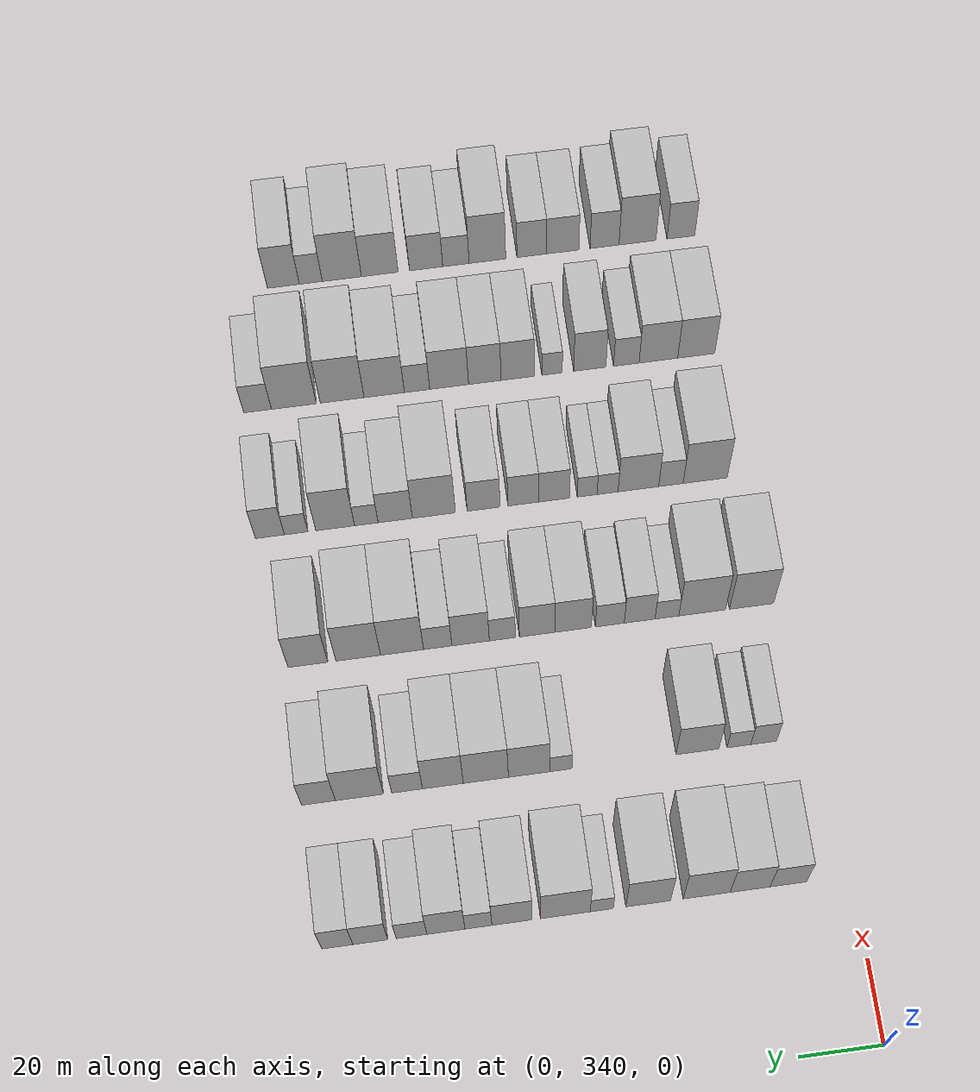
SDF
<sdf version="1.6">
 <world name="default">
  <model name="building_97">
   <static>1</static>
   <pose>50.0000 355.1132 0 0.000000 0.000000 0.000000</pose>
   <link name="link">
    <pose>0 0 9.00 0 0 0</pose>
    <collision name="collision"><geometry><box><size>20.0000 8.7633 18.0000</size></box></geometry></collision>
    <visual name="visual">
     <cast_shadows>0</cast_shadows>
     <geometry><box><size>20.0000 8.7633 18.0000</size></box></geometry>
     <material>
      <script>
       <uri>model://HANNAS_wall/materials/scripts</uri>
       <uri>model://HANNAS_wall/materials/textures</uri>
       <name>vrc/HANNAS_wall</name>
      </script>
     </material>
    </visual>
   </link>
  </model>
  <model name="building_98">
   <static>1</static>
   <pose>50.0000 364.2690 0 0.000000 0.000000 0.000000</pose>
   <link name="link">
    <pose>0 0 10.50 0 0 0</pose>
    <collision name="collision"><geometry><box><size>20.0000 9.5482 21.0000</size></box></geometry></collision>
    <visual name="visual">
     <cast_shadows>0</cast_shadows>
     <geometry><box><size>20.0000 9.5482 21.0000</size></box></geometry>
     <material>
      <script>
       <uri>model://HANNAS_wall/materials/scripts</uri>
       <uri>model://HANNAS_wall/materials/textures</uri>
       <name>vrc/HANNAS_wall</name>
      </script>
     </material>
    </visual>
   </link>
  </model>
  <model name="building_99">
   <static>1</static>
   <pose>50.0000 374.6729 0 0.000000 0.000000 0.000000</pose>
   <link name="link">
    <pose>0 0 12.00 0 0 0</pose>
    <collision name="collision"><geometry><box><size>20.0000 11.2596 24.0000</size></box></geometry></collision>
    <visual name="visual">
     <cast_shadows>0</cast_shadows>
     <geometry><box><size>20.0000 11.2596 24.0000</size></box></geometry>
     <material>
      <script>
       <uri>model://HANNAS_wall/materials/scripts</uri>
       <uri>model://HANNAS_wall/materials/textures</uri>
       <name>vrc/HANNAS_wall</name>
      </script>
     </material>
    </visual>
   </link>
  </model>
  <model name="building_100">
   <static>1</static>
   <pose>50.0000 388.6273 0 0.000000 0.000000 0.000000</pose>
   <link name="link">
    <pose>0 0 12.00 0 0 0</pose>
    <collision name="collision"><geometry><box><size>20.0000 10.6491 24.0000</size></box></geometry></collision>
    <visual name="visual">
     <cast_shadows>0</cast_shadows>
     <geometry><box><size>20.0000 10.6491 24.0000</size></box></geometry>
     <material>
      <script>
       <uri>model://HANNAS_wall/materials/scripts</uri>
       <uri>model://HANNAS_wall/materials/textures</uri>
       <name>vrc/HANNAS_wall</name>
      </script>
     </material>
    </visual>
   </link>
  </model>
  <model name="building_101">
   <static>1</static>
   <pose>50.0000 399.6920 0 0.000000 0.000000 0.000000</pose>
   <link name="link">
    <pose>0 0 6.00 0 0 0</pose>
    <collision name="collision"><geometry><box><size>20.0000 5.4803 12.0000</size></box></geometry></collision>
    <visual name="visual">
     <cast_shadows>0</cast_shadows>
     <geometry><box><size>20.0000 5.4803 12.0000</size></box></geometry>
     <material>
      <script>
       <uri>model://HANNAS_wall/materials/scripts</uri>
       <uri>model://HANNAS_wall/materials/textures</uri>
       <name>vrc/HANNAS_wall</name>
      </script>
     </material>
    </visual>
   </link>
  </model>
  <model name="building_102">
   <static>1</static>
   <pose>50.0000 408.3237 0 0.000000 0.000000 0.000000</pose>
   <link name="link">
    <pose>0 0 12.00 0 0 0</pose>
    <collision name="collision"><geometry><box><size>20.0000 11.7831 24.0000</size></box></geometry></collision>
    <visual name="visual">
     <cast_shadows>0</cast_shadows>
     <geometry><box><size>20.0000 11.7831 24.0000</size></box></geometry>
     <material>
      <script>
       <uri>model://HANNAS_wall/materials/scripts</uri>
       <uri>model://HANNAS_wall/materials/textures</uri>
       <name>vrc/HANNAS_wall</name>
      </script>
     </material>
    </visual>
   </link>
  </model>
  <model name="building_103">
   <static>1</static>
   <pose>50.0000 420.9601 0 0.000000 0.000000 0.000000</pose>
   <link name="link">
    <pose>0 0 10.50 0 0 0</pose>
    <collision name="collision"><geometry><box><size>20.0000 9.4897 21.0000</size></box></geometry></collision>
    <visual name="visual">
     <cast_shadows>0</cast_shadows>
     <geometry><box><size>20.0000 9.4897 21.0000</size></box></geometry>
     <material>
      <script>
       <uri>model://HANNAS_wall/materials/scripts</uri>
       <uri>model://HANNAS_wall/materials/textures</uri>
       <name>vrc/HANNAS_wall</name>
      </script>
     </material>
    </visual>
   </link>
  </model>
  <model name="building_104">
   <static>1</static>
   <pose>50.0000 428.8864 0 0.000000 0.000000 0.000000</pose>
   <link name="link">
    <pose>0 0 7.50 0 0 0</pose>
    <collision name="collision"><geometry><box><size>20.0000 6.3628 15.0000</size></box></geometry></collision>
    <visual name="visual">
     <cast_shadows>0</cast_shadows>
     <geometry><box><size>20.0000 6.3628 15.0000</size></box></geometry>
     <material>
      <script>
       <uri>model://HANNAS_wall/materials/scripts</uri>
       <uri>model://HANNAS_wall/materials/textures</uri>
       <name>vrc/HANNAS_wall</name>
      </script>
     </material>
    </visual>
   </link>
  </model>
  <model name="building_105">
   <static>1</static>
   <pose>50.0000 436.5799 0 0.000000 0.000000 0.000000</pose>
   <link name="link">
    <pose>0 0 10.50 0 0 0</pose>
    <collision name="collision"><geometry><box><size>20.0000 9.0242 21.0000</size></box></geometry></collision>
    <visual name="visual">
     <cast_shadows>0</cast_shadows>
     <geometry><box><size>20.0000 9.0242 21.0000</size></box></geometry>
     <material>
      <script>
       <uri>model://HANNAS_wall/materials/scripts</uri>
       <uri>model://HANNAS_wall/materials/textures</uri>
       <name>vrc/HANNAS_wall</name>
      </script>
     </material>
    </visual>
   </link>
  </model>
  <model name="building_106">
   <static>1</static>
   <pose>50.0000 444.6844 0 0.000000 0.000000 0.000000</pose>
   <link name="link">
    <pose>0 0 7.50 0 0 0</pose>
    <collision name="collision"><geometry><box><size>20.0000 7.1848 15.0000</size></box></geometry></collision>
    <visual name="visual">
     <cast_shadows>0</cast_shadows>
     <geometry><box><size>20.0000 7.1848 15.0000</size></box></geometry>
     <material>
      <script>
       <uri>model://HANNAS_wall/materials/scripts</uri>
       <uri>model://HANNAS_wall/materials/textures</uri>
       <name>vrc/HANNAS_wall</name>
      </script>
     </material>
    </visual>
   </link>
  </model>
  <model name="building_107">
   <static>1</static>
   <pose>50.0000 454.3821 0 0.000000 0.000000 0.000000</pose>
   <link name="link">
    <pose>0 0 9.00 0 0 0</pose>
    <collision name="collision"><geometry><box><size>20.0000 8.2105 18.0000</size></box></geometry></collision>
    <visual name="visual">
     <cast_shadows>0</cast_shadows>
     <geometry><box><size>20.0000 8.2105 18.0000</size></box></geometry>
     <material>
      <script>
       <uri>model://HANNAS_wall/materials/scripts</uri>
       <uri>model://HANNAS_wall/materials/textures</uri>
       <name>vrc/HANNAS_wall</name>
      </script>
     </material>
    </visual>
   </link>
  </model>
  <model name="building_108">
   <static>1</static>
   <pose>50.0000 462.1472 0 0.000000 0.000000 0.000000</pose>
   <link name="link">
    <pose>0 0 9.00 0 0 0</pose>
    <collision name="collision"><geometry><box><size>20.0000 7.3196 18.0000</size></box></geometry></collision>
    <visual name="visual">
     <cast_shadows>0</cast_shadows>
     <geometry><box><size>20.0000 7.3196 18.0000</size></box></geometry>
     <material>
      <script>
       <uri>model://HANNAS_wall/materials/scripts</uri>
       <uri>model://HANNAS_wall/materials/textures</uri>
       <name>vrc/HANNAS_wall</name>
      </script>
     </material>
    </visual>
   </link>
  </model>
  <model name="building_222">
   <static>1</static>
   <pose>85.0000 354.8538 0 0.000000 0.000000 0.000000</pose>
   <link name="link">
    <pose>0 0 7.50 0 0 0</pose>
    <collision name="collision"><geometry><box><size>20.0000 6.3608 15.0000</size></box></geometry></collision>
    <visual name="visual">
     <cast_shadows>0</cast_shadows>
     <geometry><box><size>20.0000 6.3608 15.0000</size></box></geometry>
     <material>
      <script>
       <uri>model://HANNAS_wall/materials/scripts</uri>
       <uri>model://HANNAS_wall/materials/textures</uri>
       <name>vrc/HANNAS_wall</name>
      </script>
     </material>
    </visual>
   </link>
  </model>
  <model name="building_223">
   <static>1</static>
   <pose>85.0000 360.9358 0 0.000000 0.000000 0.000000</pose>
   <link name="link">
    <pose>0 0 6.00 0 0 0</pose>
    <collision name="collision"><geometry><box><size>20.0000 5.8031 12.0000</size></box></geometry></collision>
    <visual name="visual">
     <cast_shadows>0</cast_shadows>
     <geometry><box><size>20.0000 5.8031 12.0000</size></box></geometry>
     <material>
      <script>
       <uri>model://HANNAS_wall/materials/scripts</uri>
       <uri>model://HANNAS_wall/materials/textures</uri>
       <name>vrc/HANNAS_wall</name>
      </script>
     </material>
    </visual>
   </link>
  </model>
  <model name="building_224">
   <static>1</static>
   <pose>85.0000 371.0827 0 0.000000 0.000000 0.000000</pose>
   <link name="link">
    <pose>0 0 10.50 0 0 0</pose>
    <collision name="collision"><geometry><box><size>20.0000 10.4908 21.0000</size></box></geometry></collision>
    <visual name="visual">
     <cast_shadows>0</cast_shadows>
     <geometry><box><size>20.0000 10.4908 21.0000</size></box></geometry>
     <material>
      <script>
       <uri>model://HANNAS_wall/materials/scripts</uri>
       <uri>model://HANNAS_wall/materials/textures</uri>
       <name>vrc/HANNAS_wall</name>
      </script>
     </material>
    </visual>
   </link>
  </model>
  <model name="building_225">
   <static>1</static>
   <pose>85.0000 404.3880 0 0.000000 0.000000 0.000000</pose>
   <link name="link">
    <pose>0 0 6.00 0 0 0</pose>
    <collision name="collision"><geometry><box><size>20.0000 5.3733 12.0000</size></box></geometry></collision>
    <visual name="visual">
     <cast_shadows>0</cast_shadows>
     <geometry><box><size>20.0000 5.3733 12.0000</size></box></geometry>
     <material>
      <script>
       <uri>model://HANNAS_wall/materials/scripts</uri>
       <uri>model://HANNAS_wall/materials/textures</uri>
       <name>vrc/HANNAS_wall</name>
      </script>
     </material>
    </visual>
   </link>
  </model>
  <model name="building_226">
   <static>1</static>
   <pose>85.0000 412.0956 0 0.000000 0.000000 0.000000</pose>
   <link name="link">
    <pose>0 0 12.00 0 0 0</pose>
    <collision name="collision"><geometry><box><size>20.0000 10.0420 24.0000</size></box></geometry></collision>
    <visual name="visual">
     <cast_shadows>0</cast_shadows>
     <geometry><box><size>20.0000 10.0420 24.0000</size></box></geometry>
     <material>
      <script>
       <uri>model://HANNAS_wall/materials/scripts</uri>
       <uri>model://HANNAS_wall/materials/textures</uri>
       <name>vrc/HANNAS_wall</name>
      </script>
     </material>
    </visual>
   </link>
  </model>
  <model name="building_227">
   <static>1</static>
   <pose>85.0000 422.5827 0 0.000000 0.000000 0.000000</pose>
   <link name="link">
    <pose>0 0 12.00 0 0 0</pose>
    <collision name="collision"><geometry><box><size>20.0000 10.9322 24.0000</size></box></geometry></collision>
    <visual name="visual">
     <cast_shadows>0</cast_shadows>
     <geometry><box><size>20.0000 10.9322 24.0000</size></box></geometry>
     <material>
      <script>
       <uri>model://HANNAS_wall/materials/scripts</uri>
       <uri>model://HANNAS_wall/materials/textures</uri>
       <name>vrc/HANNAS_wall</name>
      </script>
     </material>
    </visual>
   </link>
  </model>
  <model name="building_228">
   <static>1</static>
   <pose>85.0000 432.9704 0 0.000000 0.000000 0.000000</pose>
   <link name="link">
    <pose>0 0 12.00 0 0 0</pose>
    <collision name="collision"><geometry><box><size>20.0000 9.8433 24.0000</size></box></geometry></collision>
    <visual name="visual">
     <cast_shadows>0</cast_shadows>
     <geometry><box><size>20.0000 9.8433 24.0000</size></box></geometry>
     <material>
      <script>
       <uri>model://HANNAS_wall/materials/scripts</uri>
       <uri>model://HANNAS_wall/materials/textures</uri>
       <name>vrc/HANNAS_wall</name>
      </script>
     </material>
    </visual>
   </link>
  </model>
  <model name="building_229">
   <static>1</static>
   <pose>85.0000 441.6124 0 0.000000 0.000000 0.000000</pose>
   <link name="link">
    <pose>0 0 7.50 0 0 0</pose>
    <collision name="collision"><geometry><box><size>20.0000 7.4407 15.0000</size></box></geometry></collision>
    <visual name="visual">
     <cast_shadows>0</cast_shadows>
     <geometry><box><size>20.0000 7.4407 15.0000</size></box></geometry>
     <material>
      <script>
       <uri>model://HANNAS_wall/materials/scripts</uri>
       <uri>model://HANNAS_wall/materials/textures</uri>
       <name>vrc/HANNAS_wall</name>
      </script>
     </material>
    </visual>
   </link>
  </model>
  <model name="building_230">
   <static>1</static>
   <pose>85.0000 453.1230 0 0.000000 0.000000 0.000000</pose>
   <link name="link">
    <pose>0 0 12.00 0 0 0</pose>
    <collision name="collision"><geometry><box><size>20.0000 11.5804 24.0000</size></box></geometry></collision>
    <visual name="visual">
     <cast_shadows>0</cast_shadows>
     <geometry><box><size>20.0000 11.5804 24.0000</size></box></geometry>
     <material>
      <script>
       <uri>model://HANNAS_wall/materials/scripts</uri>
       <uri>model://HANNAS_wall/materials/textures</uri>
       <name>vrc/HANNAS_wall</name>
      </script>
     </material>
    </visual>
   </link>
  </model>
  <model name="building_231">
   <static>1</static>
   <pose>85.0000 462.9838 0 0.000000 0.000000 0.000000</pose>
   <link name="link">
    <pose>0 0 9.00 0 0 0</pose>
    <collision name="collision"><geometry><box><size>20.0000 8.1414 18.0000</size></box></geometry></collision>
    <visual name="visual">
     <cast_shadows>0</cast_shadows>
     <geometry><box><size>20.0000 8.1414 18.0000</size></box></geometry>
     <material>
      <script>
       <uri>model://HANNAS_wall/materials/scripts</uri>
       <uri>model://HANNAS_wall/materials/textures</uri>
       <name>vrc/HANNAS_wall</name>
      </script>
     </material>
    </visual>
   </link>
  </model>
  <model name="building_350">
   <static>1</static>
   <pose>120.0000 351.6937 0 0.000000 0.000000 0.000000</pose>
   <link name="link">
    <pose>0 0 12.00 0 0 0</pose>
    <collision name="collision"><geometry><box><size>20.0000 11.0923 24.0000</size></box></geometry></collision>
    <visual name="visual">
     <cast_shadows>0</cast_shadows>
     <geometry><box><size>20.0000 11.0923 24.0000</size></box></geometry>
     <material>
      <script>
       <uri>model://HANNAS_wall/materials/scripts</uri>
       <uri>model://HANNAS_wall/materials/textures</uri>
       <name>vrc/HANNAS_wall</name>
      </script>
     </material>
    </visual>
   </link>
  </model>
  <model name="building_351">
   <static>1</static>
   <pose>120.0000 364.0882 0 0.000000 0.000000 0.000000</pose>
   <link name="link">
    <pose>0 0 12.00 0 0 0</pose>
    <collision name="collision"><geometry><box><size>20.0000 11.6968 24.0000</size></box></geometry></collision>
    <visual name="visual">
     <cast_shadows>0</cast_shadows>
     <geometry><box><size>20.0000 11.6968 24.0000</size></box></geometry>
     <material>
      <script>
       <uri>model://HANNAS_wall/materials/scripts</uri>
       <uri>model://HANNAS_wall/materials/textures</uri>
       <name>vrc/HANNAS_wall</name>
      </script>
     </material>
    </visual>
   </link>
  </model>
  <model name="building_352">
   <static>1</static>
   <pose>120.0000 372.9166 0 0.000000 0.000000 0.000000</pose>
   <link name="link">
    <pose>0 0 6.00 0 0 0</pose>
    <collision name="collision"><geometry><box><size>20.0000 5.9599 12.0000</size></box></geometry></collision>
    <visual name="visual">
     <cast_shadows>0</cast_shadows>
     <geometry><box><size>20.0000 5.9599 12.0000</size></box></geometry>
     <material>
      <script>
       <uri>model://HANNAS_wall/materials/scripts</uri>
       <uri>model://HANNAS_wall/materials/textures</uri>
       <name>vrc/HANNAS_wall</name>
      </script>
     </material>
    </visual>
   </link>
  </model>
  <model name="building_353">
   <static>1</static>
   <pose>120.0000 379.7431 0 0.000000 0.000000 0.000000</pose>
   <link name="link">
    <pose>0 0 9.00 0 0 0</pose>
    <collision name="collision"><geometry><box><size>20.0000 7.6931 18.0000</size></box></geometry></collision>
    <visual name="visual">
     <cast_shadows>0</cast_shadows>
     <geometry><box><size>20.0000 7.6931 18.0000</size></box></geometry>
     <material>
      <script>
       <uri>model://HANNAS_wall/materials/scripts</uri>
       <uri>model://HANNAS_wall/materials/textures</uri>
       <name>vrc/HANNAS_wall</name>
      </script>
     </material>
    </visual>
   </link>
  </model>
  <model name="building_354">
   <static>1</static>
   <pose>120.0000 387.1867 0 0.000000 0.000000 0.000000</pose>
   <link name="link">
    <pose>0 0 7.50 0 0 0</pose>
    <collision name="collision"><geometry><box><size>20.0000 7.1941 15.0000</size></box></geometry></collision>
    <visual name="visual">
     <cast_shadows>0</cast_shadows>
     <geometry><box><size>20.0000 7.1941 15.0000</size></box></geometry>
     <material>
      <script>
       <uri>model://HANNAS_wall/materials/scripts</uri>
       <uri>model://HANNAS_wall/materials/textures</uri>
       <name>vrc/HANNAS_wall</name>
      </script>
     </material>
    </visual>
   </link>
  </model>
  <model name="building_355">
   <static>1</static>
   <pose>120.0000 396.3357 0 0.000000 0.000000 0.000000</pose>
   <link name="link">
    <pose>0 0 10.50 0 0 0</pose>
    <collision name="collision"><geometry><box><size>20.0000 9.1040 21.0000</size></box></geometry></collision>
    <visual name="visual">
     <cast_shadows>0</cast_shadows>
     <geometry><box><size>20.0000 9.1040 21.0000</size></box></geometry>
     <material>
      <script>
       <uri>model://HANNAS_wall/materials/scripts</uri>
       <uri>model://HANNAS_wall/materials/textures</uri>
       <name>vrc/HANNAS_wall</name>
      </script>
     </material>
    </visual>
   </link>
  </model>
  <model name="building_356">
   <static>1</static>
   <pose>120.0000 405.2878 0 0.000000 0.000000 0.000000</pose>
   <link name="link">
    <pose>0 0 10.50 0 0 0</pose>
    <collision name="collision"><geometry><box><size>20.0000 8.8002 21.0000</size></box></geometry></collision>
    <visual name="visual">
     <cast_shadows>0</cast_shadows>
     <geometry><box><size>20.0000 8.8002 21.0000</size></box></geometry>
     <material>
      <script>
       <uri>model://HANNAS_wall/materials/scripts</uri>
       <uri>model://HANNAS_wall/materials/textures</uri>
       <name>vrc/HANNAS_wall</name>
      </script>
     </material>
    </visual>
   </link>
  </model>
  <model name="building_357">
   <static>1</static>
   <pose>120.0000 413.9272 0 0.000000 0.000000 0.000000</pose>
   <link name="link">
    <pose>0 0 7.50 0 0 0</pose>
    <collision name="collision"><geometry><box><size>20.0000 6.4787 15.0000</size></box></geometry></collision>
    <visual name="visual">
     <cast_shadows>0</cast_shadows>
     <geometry><box><size>20.0000 6.4787 15.0000</size></box></geometry>
     <material>
      <script>
       <uri>model://HANNAS_wall/materials/scripts</uri>
       <uri>model://HANNAS_wall/materials/textures</uri>
       <name>vrc/HANNAS_wall</name>
      </script>
     </material>
    </visual>
   </link>
  </model>
  <model name="building_358">
   <static>1</static>
   <pose>120.0000 421.7994 0 0.000000 0.000000 0.000000</pose>
   <link name="link">
    <pose>0 0 10.50 0 0 0</pose>
    <collision name="collision"><geometry><box><size>20.0000 9.2656 21.0000</size></box></geometry></collision>
    <visual name="visual">
     <cast_shadows>0</cast_shadows>
     <geometry><box><size>20.0000 9.2656 21.0000</size></box></geometry>
     <material>
      <script>
       <uri>model://HANNAS_wall/materials/scripts</uri>
       <uri>model://HANNAS_wall/materials/textures</uri>
       <name>vrc/HANNAS_wall</name>
      </script>
     </material>
    </visual>
   </link>
  </model>
  <model name="building_359">
   <static>1</static>
   <pose>120.0000 429.9348 0 0.000000 0.000000 0.000000</pose>
   <link name="link">
    <pose>0 0 7.50 0 0 0</pose>
    <collision name="collision"><geometry><box><size>20.0000 7.0053 15.0000</size></box></geometry></collision>
    <visual name="visual">
     <cast_shadows>0</cast_shadows>
     <geometry><box><size>20.0000 7.0053 15.0000</size></box></geometry>
     <material>
      <script>
       <uri>model://HANNAS_wall/materials/scripts</uri>
       <uri>model://HANNAS_wall/materials/textures</uri>
       <name>vrc/HANNAS_wall</name>
      </script>
     </material>
    </visual>
   </link>
  </model>
  <model name="building_360">
   <static>1</static>
   <pose>120.0000 438.7653 0 0.000000 0.000000 0.000000</pose>
   <link name="link">
    <pose>0 0 12.00 0 0 0</pose>
    <collision name="collision"><geometry><box><size>20.0000 10.6556 24.0000</size></box></geometry></collision>
    <visual name="visual">
     <cast_shadows>0</cast_shadows>
     <geometry><box><size>20.0000 10.6556 24.0000</size></box></geometry>
     <material>
      <script>
       <uri>model://HANNAS_wall/materials/scripts</uri>
       <uri>model://HANNAS_wall/materials/textures</uri>
       <name>vrc/HANNAS_wall</name>
      </script>
     </material>
    </visual>
   </link>
  </model>
  <model name="building_361">
   <static>1</static>
   <pose>120.0000 449.5954 0 0.000000 0.000000 0.000000</pose>
   <link name="link">
    <pose>0 0 12.00 0 0 0</pose>
    <collision name="collision"><geometry><box><size>20.0000 11.0045 24.0000</size></box></geometry></collision>
    <visual name="visual">
     <cast_shadows>0</cast_shadows>
     <geometry><box><size>20.0000 11.0045 24.0000</size></box></geometry>
     <material>
      <script>
       <uri>model://HANNAS_wall/materials/scripts</uri>
       <uri>model://HANNAS_wall/materials/textures</uri>
       <name>vrc/HANNAS_wall</name>
      </script>
     </material>
    </visual>
   </link>
  </model>
  <model name="building_362">
   <static>1</static>
   <pose>120.0000 461.9965 0 0.000000 0.000000 0.000000</pose>
   <link name="link">
    <pose>0 0 10.50 0 0 0</pose>
    <collision name="collision"><geometry><box><size>20.0000 9.7977 21.0000</size></box></geometry></collision>
    <visual name="visual">
     <cast_shadows>0</cast_shadows>
     <geometry><box><size>20.0000 9.7977 21.0000</size></box></geometry>
     <material>
      <script>
       <uri>model://HANNAS_wall/materials/scripts</uri>
       <uri>model://HANNAS_wall/materials/textures</uri>
       <name>vrc/HANNAS_wall</name>
      </script>
     </material>
    </visual>
   </link>
  </model>
  <model name="building_471">
   <static>1</static>
   <pose>155.0000 357.4635 0 0.000000 0.000000 0.000000</pose>
   <link name="link">
    <pose>0 0 12.00 0 0 0</pose>
    <collision name="collision"><geometry><box><size>20.0000 11.3097 24.0000</size></box></geometry></collision>
    <visual name="visual">
     <cast_shadows>0</cast_shadows>
     <geometry><box><size>20.0000 11.3097 24.0000</size></box></geometry>
     <material>
      <script>
       <uri>model://HANNAS_wall/materials/scripts</uri>
       <uri>model://HANNAS_wall/materials/textures</uri>
       <name>vrc/HANNAS_wall</name>
      </script>
     </material>
    </visual>
   </link>
  </model>
  <model name="building_472">
   <static>1</static>
   <pose>155.0000 366.2553 0 0.000000 0.000000 0.000000</pose>
   <link name="link">
    <pose>0 0 7.50 0 0 0</pose>
    <collision name="collision"><geometry><box><size>20.0000 6.2739 15.0000</size></box></geometry></collision>
    <visual name="visual">
     <cast_shadows>0</cast_shadows>
     <geometry><box><size>20.0000 6.2739 15.0000</size></box></geometry>
     <material>
      <script>
       <uri>model://HANNAS_wall/materials/scripts</uri>
       <uri>model://HANNAS_wall/materials/textures</uri>
       <name>vrc/HANNAS_wall</name>
      </script>
     </material>
    </visual>
   </link>
  </model>
  <model name="building_473">
   <static>1</static>
   <pose>155.0000 374.5760 0 0.000000 0.000000 0.000000</pose>
   <link name="link">
    <pose>0 0 10.50 0 0 0</pose>
    <collision name="collision"><geometry><box><size>20.0000 10.3677 21.0000</size></box></geometry></collision>
    <visual name="visual">
     <cast_shadows>0</cast_shadows>
     <geometry><box><size>20.0000 10.3677 21.0000</size></box></geometry>
     <material>
      <script>
       <uri>model://HANNAS_wall/materials/scripts</uri>
       <uri>model://HANNAS_wall/materials/textures</uri>
       <name>vrc/HANNAS_wall</name>
      </script>
     </material>
    </visual>
   </link>
  </model>
  <model name="building_474">
   <static>1</static>
   <pose>155.0000 382.4511 0 0.000000 0.000000 0.000000</pose>
   <link name="link">
    <pose>0 0 6.00 0 0 0</pose>
    <collision name="collision"><geometry><box><size>20.0000 5.3825 12.0000</size></box></geometry></collision>
    <visual name="visual">
     <cast_shadows>0</cast_shadows>
     <geometry><box><size>20.0000 5.3825 12.0000</size></box></geometry>
     <material>
      <script>
       <uri>model://HANNAS_wall/materials/scripts</uri>
       <uri>model://HANNAS_wall/materials/textures</uri>
       <name>vrc/HANNAS_wall</name>
      </script>
     </material>
    </visual>
   </link>
  </model>
  <model name="building_475">
   <static>1</static>
   <pose>155.0000 387.6671 0 0.000000 0.000000 0.000000</pose>
   <link name="link">
    <pose>0 0 6.00 0 0 0</pose>
    <collision name="collision"><geometry><box><size>20.0000 5.0494 12.0000</size></box></geometry></collision>
    <visual name="visual">
     <cast_shadows>0</cast_shadows>
     <geometry><box><size>20.0000 5.0494 12.0000</size></box></geometry>
     <material>
      <script>
       <uri>model://HANNAS_wall/materials/scripts</uri>
       <uri>model://HANNAS_wall/materials/textures</uri>
       <name>vrc/HANNAS_wall</name>
      </script>
     </material>
    </visual>
   </link>
  </model>
  <model name="building_476">
   <static>1</static>
   <pose>155.0000 396.1037 0 0.000000 0.000000 0.000000</pose>
   <link name="link">
    <pose>0 0 9.00 0 0 0</pose>
    <collision name="collision"><geometry><box><size>20.0000 7.8238 18.0000</size></box></geometry></collision>
    <visual name="visual">
     <cast_shadows>0</cast_shadows>
     <geometry><box><size>20.0000 7.8238 18.0000</size></box></geometry>
     <material>
      <script>
       <uri>model://HANNAS_wall/materials/scripts</uri>
       <uri>model://HANNAS_wall/materials/textures</uri>
       <name>vrc/HANNAS_wall</name>
      </script>
     </material>
    </visual>
   </link>
  </model>
  <model name="building_477">
   <static>1</static>
   <pose>155.0000 403.9241 0 0.000000 0.000000 0.000000</pose>
   <link name="link">
    <pose>0 0 9.00 0 0 0</pose>
    <collision name="collision"><geometry><box><size>20.0000 7.8169 18.0000</size></box></geometry></collision>
    <visual name="visual">
     <cast_shadows>0</cast_shadows>
     <geometry><box><size>20.0000 7.8169 18.0000</size></box></geometry>
     <material>
      <script>
       <uri>model://HANNAS_wall/materials/scripts</uri>
       <uri>model://HANNAS_wall/materials/textures</uri>
       <name>vrc/HANNAS_wall</name>
      </script>
     </material>
    </visual>
   </link>
  </model>
  <model name="building_478">
   <static>1</static>
   <pose>155.0000 414.0114 0 0.000000 0.000000 0.000000</pose>
   <link name="link">
    <pose>0 0 9.00 0 0 0</pose>
    <collision name="collision"><geometry><box><size>20.0000 8.3577 18.0000</size></box></geometry></collision>
    <visual name="visual">
     <cast_shadows>0</cast_shadows>
     <geometry><box><size>20.0000 8.3577 18.0000</size></box></geometry>
     <material>
      <script>
       <uri>model://HANNAS_wall/materials/scripts</uri>
       <uri>model://HANNAS_wall/materials/textures</uri>
       <name>vrc/HANNAS_wall</name>
      </script>
     </material>
    </visual>
   </link>
  </model>
  <model name="building_479">
   <static>1</static>
   <pose>155.0000 426.6283 0 0.000000 0.000000 0.000000</pose>
   <link name="link">
    <pose>0 0 12.00 0 0 0</pose>
    <collision name="collision"><geometry><box><size>20.0000 10.8762 24.0000</size></box></geometry></collision>
    <visual name="visual">
     <cast_shadows>0</cast_shadows>
     <geometry><box><size>20.0000 10.8762 24.0000</size></box></geometry>
     <material>
      <script>
       <uri>model://HANNAS_wall/materials/scripts</uri>
       <uri>model://HANNAS_wall/materials/textures</uri>
       <name>vrc/HANNAS_wall</name>
      </script>
     </material>
    </visual>
   </link>
  </model>
  <model name="building_480">
   <static>1</static>
   <pose>155.0000 436.4129 0 0.000000 0.000000 0.000000</pose>
   <link name="link">
    <pose>0 0 9.00 0 0 0</pose>
    <collision name="collision"><geometry><box><size>20.0000 8.6930 18.0000</size></box></geometry></collision>
    <visual name="visual">
     <cast_shadows>0</cast_shadows>
     <geometry><box><size>20.0000 8.6930 18.0000</size></box></geometry>
     <material>
      <script>
       <uri>model://HANNAS_wall/materials/scripts</uri>
       <uri>model://HANNAS_wall/materials/textures</uri>
       <name>vrc/HANNAS_wall</name>
      </script>
     </material>
    </visual>
   </link>
  </model>
  <model name="building_481">
   <static>1</static>
   <pose>155.0000 443.7408 0 0.000000 0.000000 0.000000</pose>
   <link name="link">
    <pose>0 0 6.00 0 0 0</pose>
    <collision name="collision"><geometry><box><size>20.0000 5.9628 12.0000</size></box></geometry></collision>
    <visual name="visual">
     <cast_shadows>0</cast_shadows>
     <geometry><box><size>20.0000 5.9628 12.0000</size></box></geometry>
     <material>
      <script>
       <uri>model://HANNAS_wall/materials/scripts</uri>
       <uri>model://HANNAS_wall/materials/textures</uri>
       <name>vrc/HANNAS_wall</name>
      </script>
     </material>
    </visual>
   </link>
  </model>
  <model name="building_482">
   <static>1</static>
   <pose>155.0000 451.6033 0 0.000000 0.000000 0.000000</pose>
   <link name="link">
    <pose>0 0 12.00 0 0 0</pose>
    <collision name="collision"><geometry><box><size>20.0000 9.7621 24.0000</size></box></geometry></collision>
    <visual name="visual">
     <cast_shadows>0</cast_shadows>
     <geometry><box><size>20.0000 9.7621 24.0000</size></box></geometry>
     <material>
      <script>
       <uri>model://HANNAS_wall/materials/scripts</uri>
       <uri>model://HANNAS_wall/materials/textures</uri>
       <name>vrc/HANNAS_wall</name>
      </script>
     </material>
    </visual>
   </link>
  </model>
  <model name="building_483">
   <static>1</static>
   <pose>155.0000 461.4435 0 0.000000 0.000000 0.000000</pose>
   <link name="link">
    <pose>0 0 6.00 0 0 0</pose>
    <collision name="collision"><geometry><box><size>20.0000 5.9182 12.0000</size></box></geometry></collision>
    <visual name="visual">
     <cast_shadows>0</cast_shadows>
     <geometry><box><size>20.0000 5.9182 12.0000</size></box></geometry>
     <material>
      <script>
       <uri>model://HANNAS_wall/materials/scripts</uri>
       <uri>model://HANNAS_wall/materials/textures</uri>
       <name>vrc/HANNAS_wall</name>
      </script>
     </material>
    </visual>
   </link>
  </model>
  <model name="building_484">
   <static>1</static>
   <pose>155.0000 468.0605 0 0.000000 0.000000 0.000000</pose>
   <link name="link">
    <pose>0 0 9.00 0 0 0</pose>
    <collision name="collision"><geometry><box><size>20.0000 7.3158 18.0000</size></box></geometry></collision>
    <visual name="visual">
     <cast_shadows>0</cast_shadows>
     <geometry><box><size>20.0000 7.3158 18.0000</size></box></geometry>
     <material>
      <script>
       <uri>model://HANNAS_wall/materials/scripts</uri>
       <uri>model://HANNAS_wall/materials/textures</uri>
       <name>vrc/HANNAS_wall</name>
      </script>
     </material>
    </visual>
   </link>
  </model>
  <model name="building_600">
   <static>1</static>
   <pose>190.0000 353.9678 0 0.000000 0.000000 0.000000</pose>
   <link name="link">
    <pose>0 0 10.50 0 0 0</pose>
    <collision name="collision"><geometry><box><size>20.0000 9.7001 21.0000</size></box></geometry></collision>
    <visual name="visual">
     <cast_shadows>0</cast_shadows>
     <geometry><box><size>20.0000 9.7001 21.0000</size></box></geometry>
     <material>
      <script>
       <uri>model://HANNAS_wall/materials/scripts</uri>
       <uri>model://HANNAS_wall/materials/textures</uri>
       <name>vrc/HANNAS_wall</name>
      </script>
     </material>
    </visual>
   </link>
  </model>
  <model name="building_601">
   <static>1</static>
   <pose>190.0000 363.8756 0 0.000000 0.000000 0.000000</pose>
   <link name="link">
    <pose>0 0 10.50 0 0 0</pose>
    <collision name="collision"><geometry><box><size>20.0000 10.1155 21.0000</size></box></geometry></collision>
    <visual name="visual">
     <cast_shadows>0</cast_shadows>
     <geometry><box><size>20.0000 10.1155 21.0000</size></box></geometry>
     <material>
      <script>
       <uri>model://HANNAS_wall/materials/scripts</uri>
       <uri>model://HANNAS_wall/materials/textures</uri>
       <name>vrc/HANNAS_wall</name>
      </script>
     </material>
    </visual>
   </link>
  </model>
  <model name="building_602">
   <static>1</static>
   <pose>190.0000 372.2793 0 0.000000 0.000000 0.000000</pose>
   <link name="link">
    <pose>0 0 7.50 0 0 0</pose>
    <collision name="collision"><geometry><box><size>20.0000 6.6918 15.0000</size></box></geometry></collision>
    <visual name="visual">
     <cast_shadows>0</cast_shadows>
     <geometry><box><size>20.0000 6.6918 15.0000</size></box></geometry>
     <material>
      <script>
       <uri>model://HANNAS_wall/materials/scripts</uri>
       <uri>model://HANNAS_wall/materials/textures</uri>
       <name>vrc/HANNAS_wall</name>
      </script>
     </material>
    </visual>
   </link>
  </model>
  <model name="building_603">
   <static>1</static>
   <pose>190.0000 381.8282 0 0.000000 0.000000 0.000000</pose>
   <link name="link">
    <pose>0 0 10.50 0 0 0</pose>
    <collision name="collision"><geometry><box><size>20.0000 8.4059 21.0000</size></box></geometry></collision>
    <visual name="visual">
     <cast_shadows>0</cast_shadows>
     <geometry><box><size>20.0000 8.4059 21.0000</size></box></geometry>
     <material>
      <script>
       <uri>model://HANNAS_wall/materials/scripts</uri>
       <uri>model://HANNAS_wall/materials/textures</uri>
       <name>vrc/HANNAS_wall</name>
      </script>
     </material>
    </visual>
   </link>
  </model>
  <model name="building_604">
   <static>1</static>
   <pose>190.0000 391.6798 0 0.000000 0.000000 0.000000</pose>
   <link name="link">
    <pose>0 0 6.00 0 0 0</pose>
    <collision name="collision"><geometry><box><size>20.0000 5.2972 12.0000</size></box></geometry></collision>
    <visual name="visual">
     <cast_shadows>0</cast_shadows>
     <geometry><box><size>20.0000 5.2972 12.0000</size></box></geometry>
     <material>
      <script>
       <uri>model://HANNAS_wall/materials/scripts</uri>
       <uri>model://HANNAS_wall/materials/textures</uri>
       <name>vrc/HANNAS_wall</name>
      </script>
     </material>
    </visual>
   </link>
  </model>
  <model name="building_605">
   <static>1</static>
   <pose>190.0000 400.6275 0 0.000000 0.000000 0.000000</pose>
   <link name="link">
    <pose>0 0 10.50 0 0 0</pose>
    <collision name="collision"><geometry><box><size>20.0000 8.5982 21.0000</size></box></geometry></collision>
    <visual name="visual">
     <cast_shadows>0</cast_shadows>
     <geometry><box><size>20.0000 8.5982 21.0000</size></box></geometry>
     <material>
      <script>
       <uri>model://HANNAS_wall/materials/scripts</uri>
       <uri>model://HANNAS_wall/materials/textures</uri>
       <name>vrc/HANNAS_wall</name>
      </script>
     </material>
    </visual>
   </link>
  </model>
  <model name="building_606">
   <static>1</static>
   <pose>190.0000 409.1608 0 0.000000 0.000000 0.000000</pose>
   <link name="link">
    <pose>0 0 10.50 0 0 0</pose>
    <collision name="collision"><geometry><box><size>20.0000 8.4685 21.0000</size></box></geometry></collision>
    <visual name="visual">
     <cast_shadows>0</cast_shadows>
     <geometry><box><size>20.0000 8.4685 21.0000</size></box></geometry>
     <material>
      <script>
       <uri>model://HANNAS_wall/materials/scripts</uri>
       <uri>model://HANNAS_wall/materials/textures</uri>
       <name>vrc/HANNAS_wall</name>
      </script>
     </material>
    </visual>
   </link>
  </model>
  <model name="building_607">
   <static>1</static>
   <pose>190.0000 418.4400 0 0.000000 0.000000 0.000000</pose>
   <link name="link">
    <pose>0 0 10.50 0 0 0</pose>
    <collision name="collision"><geometry><box><size>20.0000 10.0899 21.0000</size></box></geometry></collision>
    <visual name="visual">
     <cast_shadows>0</cast_shadows>
     <geometry><box><size>20.0000 10.0899 21.0000</size></box></geometry>
     <material>
      <script>
       <uri>model://HANNAS_wall/materials/scripts</uri>
       <uri>model://HANNAS_wall/materials/textures</uri>
       <name>vrc/HANNAS_wall</name>
      </script>
     </material>
    </visual>
   </link>
  </model>
  <model name="building_608">
   <static>1</static>
   <pose>190.0000 426.7619 0 0.000000 0.000000 0.000000</pose>
   <link name="link">
    <pose>0 0 7.50 0 0 0</pose>
    <collision name="collision"><geometry><box><size>20.0000 6.5537 15.0000</size></box></geometry></collision>
    <visual name="visual">
     <cast_shadows>0</cast_shadows>
     <geometry><box><size>20.0000 6.5537 15.0000</size></box></geometry>
     <material>
      <script>
       <uri>model://HANNAS_wall/materials/scripts</uri>
       <uri>model://HANNAS_wall/materials/textures</uri>
       <name>vrc/HANNAS_wall</name>
      </script>
     </material>
    </visual>
   </link>
  </model>
  <model name="building_609">
   <static>1</static>
   <pose>190.0000 435.2577 0 0.000000 0.000000 0.000000</pose>
   <link name="link">
    <pose>0 0 10.50 0 0 0</pose>
    <collision name="collision"><geometry><box><size>20.0000 10.4380 21.0000</size></box></geometry></collision>
    <visual name="visual">
     <cast_shadows>0</cast_shadows>
     <geometry><box><size>20.0000 10.4380 21.0000</size></box></geometry>
     <material>
      <script>
       <uri>model://HANNAS_wall/materials/scripts</uri>
       <uri>model://HANNAS_wall/materials/textures</uri>
       <name>vrc/HANNAS_wall</name>
      </script>
     </material>
    </visual>
   </link>
  </model>
  <model name="building_610">
   <static>1</static>
   <pose>190.0000 446.1350 0 0.000000 0.000000 0.000000</pose>
   <link name="link">
    <pose>0 0 12.00 0 0 0</pose>
    <collision name="collision"><geometry><box><size>20.0000 11.3166 24.0000</size></box></geometry></collision>
    <visual name="visual">
     <cast_shadows>0</cast_shadows>
     <geometry><box><size>20.0000 11.3166 24.0000</size></box></geometry>
     <material>
      <script>
       <uri>model://HANNAS_wall/materials/scripts</uri>
       <uri>model://HANNAS_wall/materials/textures</uri>
       <name>vrc/HANNAS_wall</name>
      </script>
     </material>
    </visual>
   </link>
  </model>
  <model name="building_611">
   <static>1</static>
   <pose>190.0000 458.5751 0 0.000000 0.000000 0.000000</pose>
   <link name="link">
    <pose>0 0 12.00 0 0 0</pose>
    <collision name="collision"><geometry><box><size>20.0000 11.5635 24.0000</size></box></geometry></collision>
    <visual name="visual">
     <cast_shadows>0</cast_shadows>
     <geometry><box><size>20.0000 11.5635 24.0000</size></box></geometry>
     <material>
      <script>
       <uri>model://HANNAS_wall/materials/scripts</uri>
       <uri>model://HANNAS_wall/materials/textures</uri>
       <name>vrc/HANNAS_wall</name>
      </script>
     </material>
    </visual>
   </link>
  </model>
  <model name="building_612">
   <static>1</static>
   <pose>190.0000 467.9268 0 0.000000 0.000000 0.000000</pose>
   <link name="link">
    <pose>0 0 7.50 0 0 0</pose>
    <collision name="collision"><geometry><box><size>20.0000 7.1398 15.0000</size></box></geometry></collision>
    <visual name="visual">
     <cast_shadows>0</cast_shadows>
     <geometry><box><size>20.0000 7.1398 15.0000</size></box></geometry>
     <material>
      <script>
       <uri>model://HANNAS_wall/materials/scripts</uri>
       <uri>model://HANNAS_wall/materials/textures</uri>
       <name>vrc/HANNAS_wall</name>
      </script>
     </material>
    </visual>
   </link>
  </model>
  <model name="building_715">
   <static>1</static>
   <pose>225.0000 352.2770 0 0.000000 0.000000 0.000000</pose>
   <link name="link">
    <pose>0 0 9.00 0 0 0</pose>
    <collision name="collision"><geometry><box><size>20.0000 7.4305 18.0000</size></box></geometry></collision>
    <visual name="visual">
     <cast_shadows>0</cast_shadows>
     <geometry><box><size>20.0000 7.4305 18.0000</size></box></geometry>
     <material>
      <script>
       <uri>model://HANNAS_wall/materials/scripts</uri>
       <uri>model://HANNAS_wall/materials/textures</uri>
       <name>vrc/HANNAS_wall</name>
      </script>
     </material>
    </visual>
   </link>
  </model>
  <model name="building_716">
   <static>1</static>
   <pose>225.0000 363.9216 0 0.000000 0.000000 0.000000</pose>
   <link name="link">
    <pose>0 0 12.00 0 0 0</pose>
    <collision name="collision"><geometry><box><size>20.0000 9.8587 24.0000</size></box></geometry></collision>
    <visual name="visual">
     <cast_shadows>0</cast_shadows>
     <geometry><box><size>20.0000 9.8587 24.0000</size></box></geometry>
     <material>
      <script>
       <uri>model://HANNAS_wall/materials/scripts</uri>
       <uri>model://HANNAS_wall/materials/textures</uri>
       <name>vrc/HANNAS_wall</name>
      </script>
     </material>
    </visual>
   </link>
  </model>
  <model name="building_717">
   <static>1</static>
   <pose>225.0000 372.7197 0 0.000000 0.000000 0.000000</pose>
   <link name="link">
    <pose>0 0 9.00 0 0 0</pose>
    <collision name="collision"><geometry><box><size>20.0000 7.7374 18.0000</size></box></geometry></collision>
    <visual name="visual">
     <cast_shadows>0</cast_shadows>
     <geometry><box><size>20.0000 7.7374 18.0000</size></box></geometry>
     <material>
      <script>
       <uri>model://HANNAS_wall/materials/scripts</uri>
       <uri>model://HANNAS_wall/materials/textures</uri>
       <name>vrc/HANNAS_wall</name>
      </script>
     </material>
    </visual>
   </link>
  </model>
  <model name="building_718">
   <static>1</static>
   <pose>225.0000 383.8833 0 0.000000 0.000000 0.000000</pose>
   <link name="link">
    <pose>0 0 9.00 0 0 0</pose>
    <collision name="collision"><geometry><box><size>20.0000 8.5898 18.0000</size></box></geometry></collision>
    <visual name="visual">
     <cast_shadows>0</cast_shadows>
     <geometry><box><size>20.0000 8.5898 18.0000</size></box></geometry>
     <material>
      <script>
       <uri>model://HANNAS_wall/materials/scripts</uri>
       <uri>model://HANNAS_wall/materials/textures</uri>
       <name>vrc/HANNAS_wall</name>
      </script>
     </material>
    </visual>
   </link>
  </model>
  <model name="building_719">
   <static>1</static>
   <pose>225.0000 392.1265 0 0.000000 0.000000 0.000000</pose>
   <link name="link">
    <pose>0 0 9.00 0 0 0</pose>
    <collision name="collision"><geometry><box><size>20.0000 7.8966 18.0000</size></box></geometry></collision>
    <visual name="visual">
     <cast_shadows>0</cast_shadows>
     <geometry><box><size>20.0000 7.8966 18.0000</size></box></geometry>
     <material>
      <script>
       <uri>model://HANNAS_wall/materials/scripts</uri>
       <uri>model://HANNAS_wall/materials/textures</uri>
       <name>vrc/HANNAS_wall</name>
      </script>
     </material>
    </visual>
   </link>
  </model>
  <model name="building_720">
   <static>1</static>
   <pose>225.0000 403.9376 0 0.000000 0.000000 0.000000</pose>
   <link name="link">
    <pose>0 0 12.00 0 0 0</pose>
    <collision name="collision"><geometry><box><size>20.0000 9.7255 24.0000</size></box></geometry></collision>
    <visual name="visual">
     <cast_shadows>0</cast_shadows>
     <geometry><box><size>20.0000 9.7255 24.0000</size></box></geometry>
     <material>
      <script>
       <uri>model://HANNAS_wall/materials/scripts</uri>
       <uri>model://HANNAS_wall/materials/textures</uri>
       <name>vrc/HANNAS_wall</name>
      </script>
     </material>
    </visual>
   </link>
  </model>
  <model name="building_721">
   <static>1</static>
   <pose>225.0000 412.3038 0 0.000000 0.000000 0.000000</pose>
   <link name="link">
    <pose>0 0 7.50 0 0 0</pose>
    <collision name="collision"><geometry><box><size>20.0000 7.0070 15.0000</size></box></geometry></collision>
    <visual name="visual">
     <cast_shadows>0</cast_shadows>
     <geometry><box><size>20.0000 7.0070 15.0000</size></box></geometry>
     <material>
      <script>
       <uri>model://HANNAS_wall/materials/scripts</uri>
       <uri>model://HANNAS_wall/materials/textures</uri>
       <name>vrc/HANNAS_wall</name>
      </script>
     </material>
    </visual>
   </link>
  </model>
  <model name="building_722">
   <static>1</static>
   <pose>225.0000 420.2052 0 0.000000 0.000000 0.000000</pose>
   <link name="link">
    <pose>0 0 9.00 0 0 0</pose>
    <collision name="collision"><geometry><box><size>20.0000 8.7958 18.0000</size></box></geometry></collision>
    <visual name="visual">
     <cast_shadows>0</cast_shadows>
     <geometry><box><size>20.0000 8.7958 18.0000</size></box></geometry>
     <material>
      <script>
       <uri>model://HANNAS_wall/materials/scripts</uri>
       <uri>model://HANNAS_wall/materials/textures</uri>
       <name>vrc/HANNAS_wall</name>
      </script>
     </material>
    </visual>
   </link>
  </model>
  <model name="building_723">
   <static>1</static>
   <pose>225.0000 432.4684 0 0.000000 0.000000 0.000000</pose>
   <link name="link">
    <pose>0 0 10.50 0 0 0</pose>
    <collision name="collision"><geometry><box><size>20.0000 9.7307 21.0000</size></box></geometry></collision>
    <visual name="visual">
     <cast_shadows>0</cast_shadows>
     <geometry><box><size>20.0000 9.7307 21.0000</size></box></geometry>
     <material>
      <script>
       <uri>model://HANNAS_wall/materials/scripts</uri>
       <uri>model://HANNAS_wall/materials/textures</uri>
       <name>vrc/HANNAS_wall</name>
      </script>
     </material>
    </visual>
   </link>
  </model>
  <model name="building_724">
   <static>1</static>
   <pose>225.0000 442.4979 0 0.000000 0.000000 0.000000</pose>
   <link name="link">
    <pose>0 0 12.00 0 0 0</pose>
    <collision name="collision"><geometry><box><size>20.0000 10.3283 24.0000</size></box></geometry></collision>
    <visual name="visual">
     <cast_shadows>0</cast_shadows>
     <geometry><box><size>20.0000 10.3283 24.0000</size></box></geometry>
     <material>
      <script>
       <uri>model://HANNAS_wall/materials/scripts</uri>
       <uri>model://HANNAS_wall/materials/textures</uri>
       <name>vrc/HANNAS_wall</name>
      </script>
     </material>
    </visual>
   </link>
  </model>
  <model name="building_725">
   <static>1</static>
   <pose>225.0000 450.6920 0 0.000000 0.000000 0.000000</pose>
   <link name="link">
    <pose>0 0 7.50 0 0 0</pose>
    <collision name="collision"><geometry><box><size>20.0000 6.0599 15.0000</size></box></geometry></collision>
    <visual name="visual">
     <cast_shadows>0</cast_shadows>
     <geometry><box><size>20.0000 6.0599 15.0000</size></box></geometry>
     <material>
      <script>
       <uri>model://HANNAS_wall/materials/scripts</uri>
       <uri>model://HANNAS_wall/materials/textures</uri>
       <name>vrc/HANNAS_wall</name>
      </script>
     </material>
    </visual>
   </link>
  </model>
  <model name="building_726">
   <static>1</static>
   <pose>225.0000 457.9255 0 0.000000 0.000000 0.000000</pose>
   <link name="link">
    <pose>0 0 10.50 0 0 0</pose>
    <collision name="collision"><geometry><box><size>20.0000 8.4070 21.0000</size></box></geometry></collision>
    <visual name="visual">
     <cast_shadows>0</cast_shadows>
     <geometry><box><size>20.0000 8.4070 21.0000</size></box></geometry>
     <material>
      <script>
       <uri>model://HANNAS_wall/materials/scripts</uri>
       <uri>model://HANNAS_wall/materials/textures</uri>
       <name>vrc/HANNAS_wall</name>
      </script>
     </material>
    </visual>
   </link>
  </model>
 </world>
</sdf>
